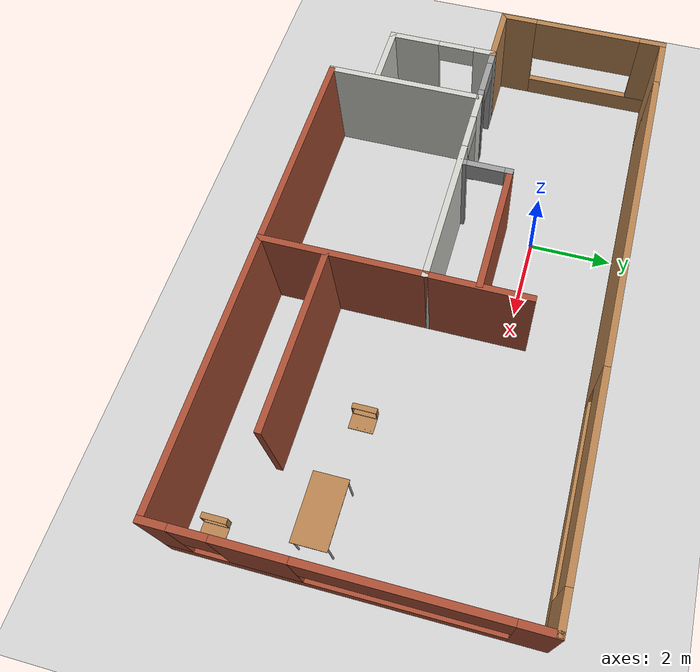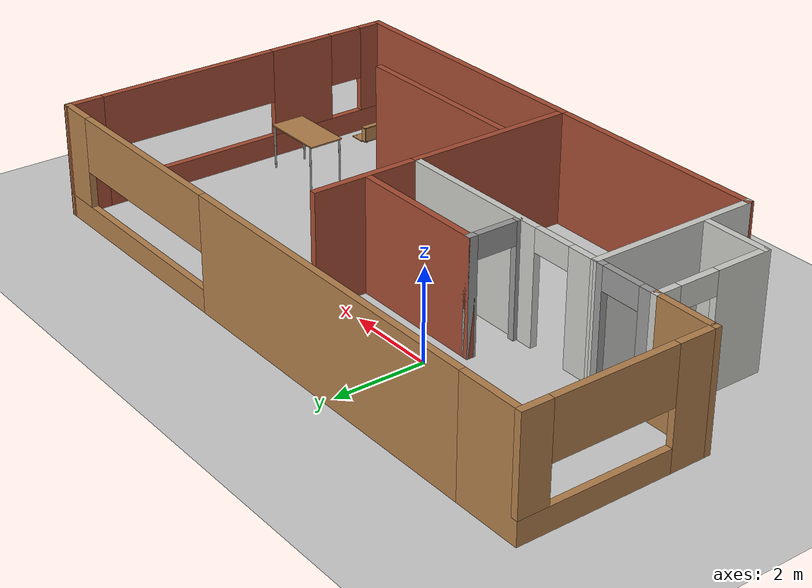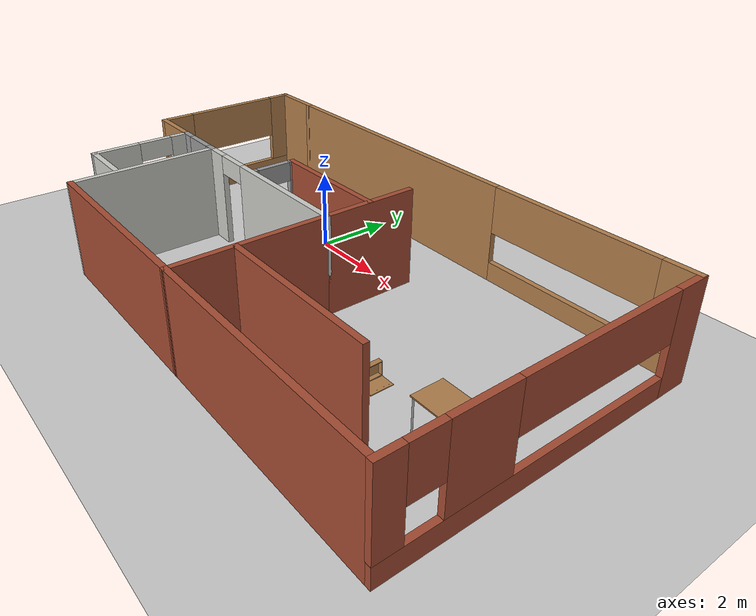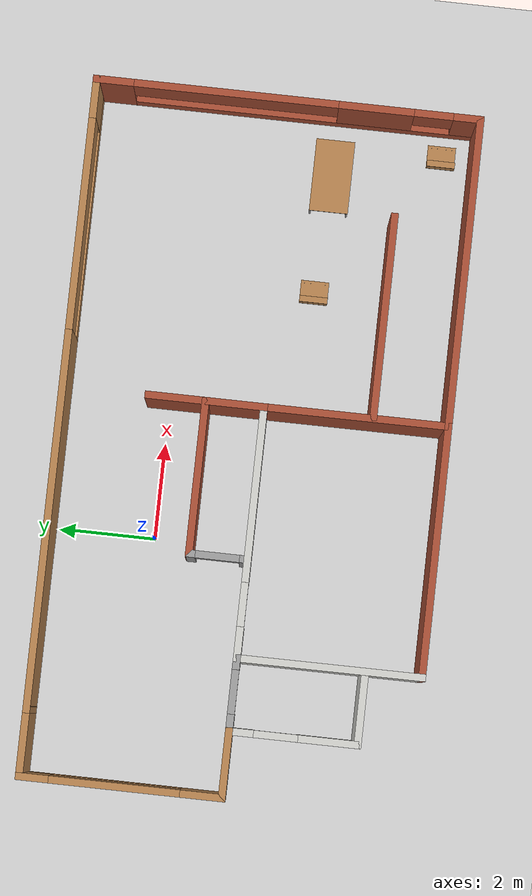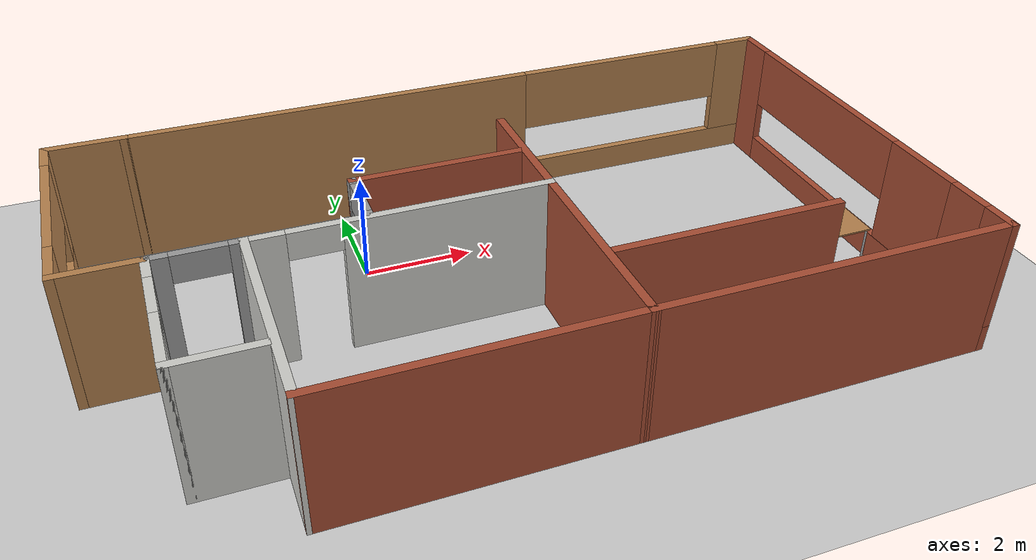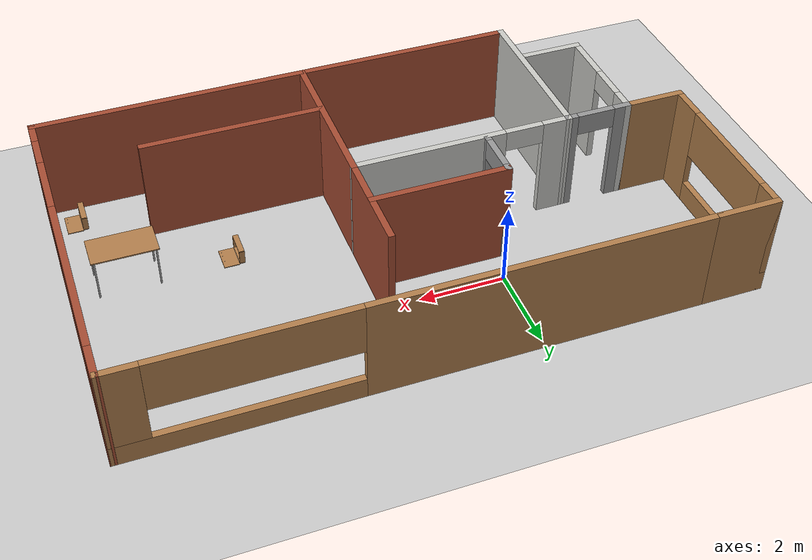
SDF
<sdf version="1.6">
 <world name="default">
  <model name="ground_plane">
   <static>1</static>
   <link name="link">
    <collision name="collision">
     <geometry><plane><normal>0 0 1</normal><size>100 100</size></plane></geometry>
     <surface><friction><ode><mu>100</mu><mu2>50</mu2></ode></friction></surface>
    </collision>
    <visual name="visual">
     <cast_shadows>0</cast_shadows>
     <geometry><plane><normal>0 0 1</normal><size>100 100</size></plane></geometry>
     <material>
      <script><uri>file://media/materials/scripts/gazebo.material</uri><name>Gazebo/Grey</name></script>
     </material>
    </visual>
   </link>
  </model>
  <model name="myplace">
   <pose>1.99043 -1.78813 0 0 -0 0</pose>
   <link name="Wall_56">
    <pose>-5.02365 -0.175493 0 0 -0 3.14159</pose>
    <visual name="Wall_56_Visual_0">
     <pose>-0.660344 0 1.25 0 -0 0</pose>
     <geometry><box><size>0.30723 0.15 2.5</size></box></geometry>
     <material>
      <script><uri>file://media/materials/scripts/gazebo.material</uri><name>Gazebo/Grey</name></script>
      <ambient>1 1 1 1</ambient>
     </material>
     <meta><layer>0</layer></meta>
    </visual>
    <collision name="Wall_56_Collision_0">
     <geometry><box><size>0.30723 0.15 2.5</size></box></geometry>
     <pose>-0.660344 0 1.25 0 -0 0</pose>
    </collision>
    <visual name="Wall_56_Visual_1">
     <pose>0.603615 0 1.25 0 -0 0</pose>
     <geometry><box><size>0.420688 0.15 2.5</size></box></geometry>
     <material>
      <script><uri>file://media/materials/scripts/gazebo.material</uri><name>Gazebo/Grey</name></script>
      <ambient>1 1 1 1</ambient>
     </material>
     <meta><layer>0</layer></meta>
    </visual>
    <collision name="Wall_56_Collision_1">
     <geometry><box><size>0.420688 0.15 2.5</size></box></geometry>
     <pose>0.603615 0 1.25 0 -0 0</pose>
    </collision>
    <visual name="Wall_56_Visual_2">
     <pose>-0.056729 0 2.25 0 -0 0</pose>
     <geometry><box><size>0.9 0.15 0.5</size></box></geometry>
     <material>
      <script><uri>file://media/materials/scripts/gazebo.material</uri><name>Gazebo/Grey</name></script>
      <ambient>1 1 1 1</ambient>
     </material>
     <meta><layer>0</layer></meta>
    </visual>
    <collision name="Wall_56_Collision_2">
     <geometry><box><size>0.9 0.15 0.5</size></box></geometry>
     <pose>-0.056729 0 2.25 0 -0 0</pose>
    </collision>
   </link>
   <link name="Wall_58">
    <pose>0.66434 3.92507 0 0 -0 8.8e-05</pose>
    <visual name="Wall_58_Visual_0">
     <pose>-2.59963 0 1.25 0 -0 0</pose>
     <geometry><box><size>7.80465 0.15 2.5</size></box></geometry>
     <material>
      <script><uri>file://media/materials/scripts/gazebo.material</uri><name>Gazebo/Wood</name></script>
      <ambient>1 1 1 1</ambient>
     </material>
     <meta><layer>0</layer></meta>
    </visual>
    <collision name="Wall_58_Collision_0">
     <geometry><box><size>7.80465 0.15 2.5</size></box></geometry>
     <pose>-2.59963 0 1.25 0 -0 0</pose>
    </collision>
    <visual name="Wall_58_Visual_1">
     <pose>3.90232 0 0.25 0 -0 0</pose>
     <geometry><box><size>5.19925 0.15 0.5</size></box></geometry>
     <material>
      <script><uri>file://media/materials/scripts/gazebo.material</uri><name>Gazebo/Wood</name></script>
      <ambient>1 1 1 1</ambient>
     </material>
     <meta><layer>0</layer></meta>
    </visual>
    <collision name="Wall_58_Collision_1">
     <geometry><box><size>5.19925 0.15 0.5</size></box></geometry>
     <pose>3.90232 0 0.25 0 -0 0</pose>
    </collision>
    <visual name="Wall_58_Visual_2">
     <pose>6.07184 0 1.5 0 -0 0</pose>
     <geometry><box><size>0.860213 0.15 2</size></box></geometry>
     <material>
      <script><uri>file://media/materials/scripts/gazebo.material</uri><name>Gazebo/Wood</name></script>
      <ambient>1 1 1 1</ambient>
     </material>
     <meta><layer>0</layer></meta>
    </visual>
    <collision name="Wall_58_Collision_2">
     <geometry><box><size>0.860213 0.15 2</size></box></geometry>
     <pose>6.07184 0 1.5 0 -0 0</pose>
    </collision>
    <visual name="Wall_58_Visual_3">
     <pose>3.47222 0 1.9 0 -0 0</pose>
     <geometry><box><size>4.33904 0.15 1.2</size></box></geometry>
     <material>
      <script><uri>file://media/materials/scripts/gazebo.material</uri><name>Gazebo/Wood</name></script>
      <ambient>1 1 1 1</ambient>
     </material>
     <meta><layer>0</layer></meta>
    </visual>
    <collision name="Wall_58_Collision_3">
     <geometry><box><size>4.33904 0.15 1.2</size></box></geometry>
     <pose>3.47222 0 1.9 0 -0 0</pose>
    </collision>
   </link>
   <link name="Wall_59">
    <pose>7.11261 0.000633 0 0 0 -1.5708</pose>
    <visual name="Wall_59_Visual_0">
     <pose>-3.58058 0 1.25 0 -0 0</pose>
     <geometry><box><size>0.838846 0.15 2.5</size></box></geometry>
     <material>
      <script><uri>file://media/materials/scripts/gazebo.material</uri><name>Gazebo/Bricks</name></script>
      <ambient>1 1 1 1</ambient>
     </material>
     <meta><layer>0</layer></meta>
    </visual>
    <collision name="Wall_59_Collision_0">
     <geometry><box><size>0.838846 0.15 2.5</size></box></geometry>
     <pose>-3.58058 0 1.25 0 -0 0</pose>
    </collision>
    <visual name="Wall_59_Visual_1">
     <pose>0.419423 0 0.25 0 -0 0</pose>
     <geometry><box><size>7.16115 0.15 0.5</size></box></geometry>
     <material>
      <script><uri>file://media/materials/scripts/gazebo.material</uri><name>Gazebo/Bricks</name></script>
      <ambient>1 1 1 1</ambient>
     </material>
     <meta><layer>0</layer></meta>
    </visual>
    <collision name="Wall_59_Collision_1">
     <geometry><box><size>7.16115 0.15 0.5</size></box></geometry>
     <pose>0.419423 0 0.25 0 -0 0</pose>
    </collision>
    <visual name="Wall_59_Visual_2">
     <pose>1.80126 0 1.5 0 -0 0</pose>
     <geometry><box><size>1.54516 0.15 2</size></box></geometry>
     <material>
      <script><uri>file://media/materials/scripts/gazebo.material</uri><name>Gazebo/Bricks</name></script>
      <ambient>1 1 1 1</ambient>
     </material>
     <meta><layer>0</layer></meta>
    </visual>
    <collision name="Wall_59_Collision_2">
     <geometry><box><size>1.54516 0.15 2</size></box></geometry>
     <pose>1.80126 0 1.5 0 -0 0</pose>
    </collision>
    <visual name="Wall_59_Visual_3">
     <pose>3.68692 0 1.5 0 -0 0</pose>
     <geometry><box><size>0.62616 0.15 2</size></box></geometry>
     <material>
      <script><uri>file://media/materials/scripts/gazebo.material</uri><name>Gazebo/Bricks</name></script>
      <ambient>1 1 1 1</ambient>
     </material>
     <meta><layer>0</layer></meta>
    </visual>
    <collision name="Wall_59_Collision_3">
     <geometry><box><size>0.62616 0.15 2</size></box></geometry>
     <pose>3.68692 0 1.5 0 -0 0</pose>
    </collision>
    <visual name="Wall_59_Visual_4">
     <pose>-1.06624 0 1.9 0 -0 0</pose>
     <geometry><box><size>4.18983 0.15 1.2</size></box></geometry>
     <material>
      <script><uri>file://media/materials/scripts/gazebo.material</uri><name>Gazebo/Bricks</name></script>
      <ambient>1 1 1 1</ambient>
     </material>
     <meta><layer>0</layer></meta>
    </visual>
    <collision name="Wall_59_Collision_4">
     <geometry><box><size>4.18983 0.15 1.2</size></box></geometry>
     <pose>-1.06624 0 1.9 0 -0 0</pose>
    </collision>
    <visual name="Wall_59_Visual_5">
     <pose>2.97384 0 1.9 0 -0 0</pose>
     <geometry><box><size>0.8 0.15 1.2</size></box></geometry>
     <material>
      <script><uri>file://media/materials/scripts/gazebo.material</uri><name>Gazebo/Bricks</name></script>
      <ambient>1 1 1 1</ambient>
     </material>
     <meta><layer>0</layer></meta>
    </visual>
    <collision name="Wall_59_Collision_5">
     <geometry><box><size>0.8 0.15 1.2</size></box></geometry>
     <pose>2.97384 0 1.9 0 -0 0</pose>
    </collision>
   </link>
   <link name="Wall_60">
    <collision name="Wall_60_Collision">
     <geometry><box><size>6.41862 0.15 2.5</size></box></geometry>
     <pose>0 0 1.25 0 -0 0</pose>
    </collision>
    <visual name="Wall_60_Visual">
     <pose>0 0 1.25 0 -0 0</pose>
     <geometry><box><size>6.41862 0.15 2.5</size></box></geometry>
     <material>
      <script><uri>file://media/materials/scripts/gazebo.material</uri><name>Gazebo/Bricks</name></script>
      <ambient>1 1 1 1</ambient>
     </material>
     <meta><layer>0</layer></meta>
    </visual>
    <pose>3.95698 -3.92493 0 0 0 -3.14141</pose>
   </link>
   <link name="Wall_69">
    <pose>-1.73469 -0.175493 0 0 -0 0</pose>
    <visual name="Wall_69_Visual_0">
     <pose>-2.26885 0 1.25 0 -0 0</pose>
     <geometry><box><size>0.712304 0.15 2.5</size></box></geometry>
     <material>
      <script><uri>file://media/materials/scripts/gazebo.material</uri><name>Gazebo/CeilingTiled</name></script>
      <ambient>1 1 1 1</ambient>
     </material>
     <meta><layer>0</layer></meta>
    </visual>
    <collision name="Wall_69_Collision_0">
     <geometry><box><size>0.712304 0.15 2.5</size></box></geometry>
     <pose>-2.26885 0 1.25 0 -0 0</pose>
    </collision>
    <visual name="Wall_69_Visual_1">
     <pose>0.806152 0 1.25 0 -0 0</pose>
     <geometry><box><size>3.6377 0.15 2.5</size></box></geometry>
     <material>
      <script><uri>file://media/materials/scripts/gazebo.material</uri><name>Gazebo/CeilingTiled</name></script>
      <ambient>1 1 1 1</ambient>
     </material>
     <meta><layer>0</layer></meta>
    </visual>
    <collision name="Wall_69_Collision_1">
     <geometry><box><size>3.6377 0.15 2.5</size></box></geometry>
     <pose>0.806152 0 1.25 0 -0 0</pose>
    </collision>
    <visual name="Wall_69_Visual_2">
     <pose>-1.4627 0 2.25 0 -0 0</pose>
     <geometry><box><size>0.9 0.15 0.5</size></box></geometry>
     <material>
      <script><uri>file://media/materials/scripts/gazebo.material</uri><name>Gazebo/CeilingTiled</name></script>
      <ambient>1 1 1 1</ambient>
     </material>
     <meta><layer>0</layer></meta>
    </visual>
    <collision name="Wall_69_Collision_2">
     <geometry><box><size>0.9 0.15 0.5</size></box></geometry>
     <pose>-1.4627 0 2.25 0 -0 0</pose>
    </collision>
   </link>
   <link name="Wall_72">
    <collision name="Wall_72_Collision">
     <geometry><box><size>3.90001 0.15 2.5</size></box></geometry>
     <pose>0 0 1.25 0 -0 0</pose>
    </collision>
    <visual name="Wall_72_Visual">
     <pose>0 0 1.25 0 -0 0</pose>
     <geometry><box><size>3.90001 0.15 2.5</size></box></geometry>
     <material>
      <script><uri>file://media/materials/scripts/gazebo.material</uri><name>Gazebo/Bricks</name></script>
      <ambient>1 1 1 1</ambient>
     </material>
     <meta><layer>0</layer></meta>
    </visual>
    <pose>0.818989 -2.05049 0 0 0 -1.56883</pose>
   </link>
   <link name="Wall_74">
    <collision name="Wall_74_Collision">
     <geometry><box><size>5.25 0.15 2.5</size></box></geometry>
     <pose>0 0 1.25 0 -0 0</pose>
    </collision>
    <visual name="Wall_74_Visual">
     <pose>0 0 1.25 0 -0 0</pose>
     <geometry><box><size>5.25 0.15 2.5</size></box></geometry>
     <material>
      <script><uri>file://media/materials/scripts/gazebo.material</uri><name>Gazebo/Bricks</name></script>
      <ambient>1 1 1 1</ambient>
     </material>
     <meta><layer>0</layer></meta>
    </visual>
    <pose>-1.72733 -3.92549 0 0 -0 3.14159</pose>
   </link>
   <link name="Wall_75">
    <collision name="Wall_75_Collision">
     <geometry><box><size>3.90001 0.15 2.5</size></box></geometry>
     <pose>0 0 1.25 0 -0 0</pose>
    </collision>
    <visual name="Wall_75_Visual">
     <pose>0 0 1.25 0 -0 0</pose>
     <geometry><box><size>3.90001 0.15 2.5</size></box></geometry>
     <material>
      <script><uri>file://media/materials/scripts/gazebo.material</uri><name>Gazebo/CeilingTiled</name></script>
      <ambient>1 1 1 1</ambient>
     </material>
     <meta><layer>0</layer></meta>
    </visual>
    <pose>-4.28101 -2.05049 0 0 -0 1.57276</pose>
   </link>
   <link name="Wall_79">
    <collision name="Wall_79_Collision">
     <geometry><box><size>2.5 0.15 2.5</size></box></geometry>
     <pose>0 0 1.25 0 -0 0</pose>
    </collision>
    <visual name="Wall_79_Visual">
     <pose>0 0 1.25 0 -0 0</pose>
     <geometry><box><size>2.5 0.15 2.5</size></box></geometry>
     <material>
      <script><uri>file://media/materials/scripts/gazebo.material</uri><name>Gazebo/Bricks</name></script>
      <ambient>1 1 1 1</ambient>
     </material>
     <meta><layer>0</layer></meta>
    </visual>
    <pose>0.815308 0.999507 0 0 -0 1.5708</pose>
   </link>
   <link name="Wall_81">
    <collision name="Wall_81_Collision">
     <geometry><box><size>4.25 0.15 2.5</size></box></geometry>
     <pose>0 0 1.25 0 -0 0</pose>
    </collision>
    <visual name="Wall_81_Visual">
     <pose>0 0 1.25 0 -0 0</pose>
     <geometry><box><size>4.25 0.15 2.5</size></box></geometry>
     <material>
      <script><uri>file://media/materials/scripts/gazebo.material</uri><name>Gazebo/Bricks</name></script>
      <ambient>1 1 1 1</ambient>
     </material>
     <meta><layer>0</layer></meta>
    </visual>
    <pose>2.90335 -2.39757 0 0 -0 0</pose>
   </link>
   <link name="Wall_83">
    <collision name="Wall_83_Collision">
     <geometry><box><size>3.25 0.15 2.5</size></box></geometry>
     <pose>0 0 1.25 0 -0 0</pose>
    </collision>
    <visual name="Wall_83_Visual">
     <pose>0 0 1.25 0 -0 0</pose>
     <geometry><box><size>3.25 0.15 2.5</size></box></geometry>
     <material>
      <script><uri>file://media/materials/scripts/gazebo.material</uri><name>Gazebo/Bricks</name></script>
      <ambient>1 1 1 1</ambient>
     </material>
     <meta><layer>0</layer></meta>
    </visual>
    <pose>-0.739288 1.01357 0 0 -0 3.14159</pose>
   </link>
   <link name="Wall_84">
    <pose>-2.28929 0.463574 0 0 0 -1.5708</pose>
    <visual name="Wall_84_Visual_0">
     <pose>-0.524684 0 1.25 0 -0 0</pose>
     <geometry><box><size>0.200631 0.15 2.5</size></box></geometry>
     <material>
      <script><uri>file://media/materials/scripts/gazebo.material</uri><name>Gazebo/Grey</name></script>
      <ambient>1 1 1 1</ambient>
     </material>
     <meta><layer>0</layer></meta>
    </visual>
    <collision name="Wall_84_Collision_0">
     <geometry><box><size>0.200631 0.15 2.5</size></box></geometry>
     <pose>-0.524684 0 1.25 0 -0 0</pose>
    </collision>
    <visual name="Wall_84_Visual_1">
     <pose>0.550316 0 1.25 0 -0 0</pose>
     <geometry><box><size>0.149369 0.15 2.5</size></box></geometry>
     <material>
      <script><uri>file://media/materials/scripts/gazebo.material</uri><name>Gazebo/Grey</name></script>
      <ambient>1 1 1 1</ambient>
     </material>
     <meta><layer>0</layer></meta>
    </visual>
    <collision name="Wall_84_Collision_1">
     <geometry><box><size>0.149369 0.15 2.5</size></box></geometry>
     <pose>0.550316 0 1.25 0 -0 0</pose>
    </collision>
    <visual name="Wall_84_Visual_2">
     <pose>0.025631 0 2.25 0 -0 0</pose>
     <geometry><box><size>0.9 0.15 0.5</size></box></geometry>
     <material>
      <script><uri>file://media/materials/scripts/gazebo.material</uri><name>Gazebo/Grey</name></script>
      <ambient>1 1 1 1</ambient>
     </material>
     <meta><layer>0</layer></meta>
    </visual>
    <collision name="Wall_84_Collision_2">
     <geometry><box><size>0.9 0.15 0.5</size></box></geometry>
     <pose>0.025631 0 2.25 0 -0 0</pose>
    </collision>
   </link>
   <link name="Wall_86">
    <pose>-5.76261 -1.47549 0 0 0 -1.5708</pose>
    <visual name="Wall_86_Visual_0">
     <pose>-1.09105 0 1.25 0 -0 0</pose>
     <geometry><box><size>0.567901 0.15 2.5</size></box></geometry>
     <material>
      <script><uri>file://media/materials/scripts/gazebo.material</uri><name>Gazebo/CeilingTiled</name></script>
      <ambient>1 1 1 1</ambient>
     </material>
     <meta><layer>0</layer></meta>
    </visual>
    <collision name="Wall_86_Collision_0">
     <geometry><box><size>0.567901 0.15 2.5</size></box></geometry>
     <pose>-1.09105 0 1.25 0 -0 0</pose>
    </collision>
    <visual name="Wall_86_Visual_1">
     <pose>0.73395 0 1.25 0 -0 0</pose>
     <geometry><box><size>1.2821 0.15 2.5</size></box></geometry>
     <material>
      <script><uri>file://media/materials/scripts/gazebo.material</uri><name>Gazebo/CeilingTiled</name></script>
      <ambient>1 1 1 1</ambient>
     </material>
     <meta><layer>0</layer></meta>
    </visual>
    <collision name="Wall_86_Collision_1">
     <geometry><box><size>1.2821 0.15 2.5</size></box></geometry>
     <pose>0.73395 0 1.25 0 -0 0</pose>
    </collision>
    <visual name="Wall_86_Visual_2">
     <pose>-0.357099 0 2.25 0 -0 0</pose>
     <geometry><box><size>0.9 0.15 0.5</size></box></geometry>
     <material>
      <script><uri>file://media/materials/scripts/gazebo.material</uri><name>Gazebo/CeilingTiled</name></script>
      <ambient>1 1 1 1</ambient>
     </material>
     <meta><layer>0</layer></meta>
    </visual>
    <collision name="Wall_86_Collision_2">
     <geometry><box><size>0.9 0.15 0.5</size></box></geometry>
     <pose>-0.357099 0 2.25 0 -0 0</pose>
    </collision>
   </link>
   <link name="Wall_87">
    <collision name="Wall_87_Collision">
     <geometry><box><size>1.5 0.15 2.5</size></box></geometry>
     <pose>0 0 1.25 0 -0 0</pose>
    </collision>
    <visual name="Wall_87_Visual">
     <pose>0 0 1.25 0 -0 0</pose>
     <geometry><box><size>1.5 0.15 2.5</size></box></geometry>
     <material>
      <script><uri>file://media/materials/scripts/gazebo.material</uri><name>Gazebo/CeilingTiled</name></script>
      <ambient>1 1 1 1</ambient>
     </material>
     <meta><layer>0</layer></meta>
    </visual>
    <pose>-5.08761 -2.77549 0 0 -0 0</pose>
   </link>
   <link name="Wall_89">
    <collision name="Wall_89_Collision">
     <geometry><box><size>1.5 0.15 2.5</size></box></geometry>
     <pose>0 0 1.25 0 -0 0</pose>
    </collision>
    <visual name="Wall_89_Visual">
     <pose>0 0 1.25 0 -0 0</pose>
     <geometry><box><size>1.5 0.15 2.5</size></box></geometry>
     <material>
      <script><uri>file://media/materials/scripts/gazebo.material</uri><name>Gazebo/Wood</name></script>
      <ambient>1 1 1 1</ambient>
     </material>
     <meta><layer>0</layer></meta>
    </visual>
    <pose>-6.43761 -0.175493 0 0 -0 3.14159</pose>
   </link>
   <link name="Wall_90">
    <pose>-7.11261 1.87451 0 0 -0 1.5708</pose>
    <visual name="Wall_90_Visual_0">
     <pose>-1.66099 0 1.25 0 -0 0</pose>
     <geometry><box><size>0.928026 0.15 2.5</size></box></geometry>
     <material>
      <script><uri>file://media/materials/scripts/gazebo.material</uri><name>Gazebo/Wood</name></script>
      <ambient>1 1 1 1</ambient>
     </material>
     <meta><layer>0</layer></meta>
    </visual>
    <collision name="Wall_90_Collision_0">
     <geometry><box><size>0.928026 0.15 2.5</size></box></geometry>
     <pose>-1.66099 0 1.25 0 -0 0</pose>
    </collision>
    <visual name="Wall_90_Visual_1">
     <pose>0.464013 0 0.25 0 -0 0</pose>
     <geometry><box><size>3.32197 0.15 0.5</size></box></geometry>
     <material>
      <script><uri>file://media/materials/scripts/gazebo.material</uri><name>Gazebo/Wood</name></script>
      <ambient>1 1 1 1</ambient>
     </material>
     <meta><layer>0</layer></meta>
    </visual>
    <collision name="Wall_90_Collision_1">
     <geometry><box><size>3.32197 0.15 0.5</size></box></geometry>
     <pose>0.464013 0 0.25 0 -0 0</pose>
    </collision>
    <visual name="Wall_90_Visual_2">
     <pose>1.79142 0 1.5 0 -0 0</pose>
     <geometry><box><size>0.667162 0.15 2</size></box></geometry>
     <material>
      <script><uri>file://media/materials/scripts/gazebo.material</uri><name>Gazebo/Wood</name></script>
      <ambient>1 1 1 1</ambient>
     </material>
     <meta><layer>0</layer></meta>
    </visual>
    <collision name="Wall_90_Collision_2">
     <geometry><box><size>0.667162 0.15 2</size></box></geometry>
     <pose>1.79142 0 1.5 0 -0 0</pose>
    </collision>
    <visual name="Wall_90_Visual_3">
     <pose>0.130432 0 1.9 0 -0 0</pose>
     <geometry><box><size>2.65481 0.15 1.2</size></box></geometry>
     <material>
      <script><uri>file://media/materials/scripts/gazebo.material</uri><name>Gazebo/Wood</name></script>
      <ambient>1 1 1 1</ambient>
     </material>
     <meta><layer>0</layer></meta>
    </visual>
    <collision name="Wall_90_Collision_3">
     <geometry><box><size>2.65481 0.15 1.2</size></box></geometry>
     <pose>0.130432 0 1.9 0 -0 0</pose>
    </collision>
   </link>
   <link name="Wall_91">
    <collision name="Wall_91_Collision">
     <geometry><box><size>1.5 0.15 2.5</size></box></geometry>
     <pose>0 0 1.25 0 -0 0</pose>
    </collision>
    <visual name="Wall_91_Visual">
     <pose>0 0 1.25 0 -0 0</pose>
     <geometry><box><size>1.5 0.15 2.5</size></box></geometry>
     <material>
      <script><uri>file://media/materials/scripts/gazebo.material</uri><name>Gazebo/Wood</name></script>
      <ambient>1 1 1 1</ambient>
     </material>
     <meta><layer>0</layer></meta>
    </visual>
    <pose>-6.43761 3.92451 0 0 -0 0</pose>
   </link>
   <static>1</static>
  </model>
  <model name="wooden_case_3">
   <link name="base">
    <pose>0 0 0.024 0 -0 0</pose>
    <inertial>
     <pose>-0.022184 0 0.171592 0 -0 0</pose>
     <mass>3.96264</mass>
     <inertia>
      <ixx>0.213536</ixx>
      <ixy>0</ixy>
      <ixz>0.000779377</ixz>
      <iyy>0.0708943</iyy>
      <iyz>0</iyz>
      <izz>0.154604</izz>
     </inertia>
    </inertial>
    <collision name="collision_back">
     <pose>-0.053975 0 0.1778 0 -0 0</pose>
     <geometry><box><size>0.01905 0.5461 0.3175</size></box></geometry>
     <surface>
      <contact>
       <poissons_ratio>0.347</poissons_ratio>
       <elastic_modulus>8.8e+09</elastic_modulus>
       <ode><kp>100000</kp><kd>100</kd><max_vel>100</max_vel><min_depth>0.001</min_depth></ode>
      </contact>
      <friction>
       <torsional>
        <coefficient>1</coefficient>
        <use_patch_radius>0</use_patch_radius>
        <surface_radius>0.01</surface_radius>
       </torsional>
      </friction>
     </surface>
    </collision>
    <visual name="visual_back">
     <pose>-0.053975 0 0.1778 0 -0 0</pose>
     <geometry><box><size>0.01905 0.5461 0.3175</size></box></geometry>
     <material>
      <script><uri>file://media/materials/scripts/gazebo.material</uri><name>Gazebo/Wood</name></script>
     </material>
    </visual>
    <collision name="collision_bottom">
     <pose>0 0 0.009525 0 -0 0</pose>
     <geometry><box><size>0.127 0.5842 0.01905</size></box></geometry>
     <surface>
      <contact>
       <poissons_ratio>0.347</poissons_ratio>
       <elastic_modulus>8.8e+09</elastic_modulus>
       <ode><kp>100000</kp><kd>100</kd><max_vel>100</max_vel><min_depth>0.001</min_depth></ode>
      </contact>
      <friction>
       <torsional>
        <coefficient>1</coefficient>
        <use_patch_radius>0</use_patch_radius>
        <surface_radius>0.01</surface_radius>
       </torsional>
      </friction>
     </surface>
    </collision>
    <visual name="visual_bottom">
     <pose>0 0 0.009525 0 -0 0</pose>
     <geometry><box><size>0.127 0.5842 0.01905</size></box></geometry>
     <material>
      <script><uri>file://media/materials/scripts/gazebo.material</uri><name>Gazebo/Wood</name></script>
     </material>
    </visual>
    <collision name="collision_top">
     <pose>0 0 0.346075 0 -0 0</pose>
     <geometry><box><size>0.127 0.5842 0.01905</size></box></geometry>
     <surface>
      <contact>
       <poissons_ratio>0.347</poissons_ratio>
       <elastic_modulus>8.8e+09</elastic_modulus>
       <ode><kp>100000</kp><kd>100</kd><max_vel>100</max_vel><min_depth>0.001</min_depth></ode>
      </contact>
      <friction>
       <torsional>
        <coefficient>1</coefficient>
        <use_patch_radius>0</use_patch_radius>
        <surface_radius>0.01</surface_radius>
       </torsional>
      </friction>
     </surface>
    </collision>
    <visual name="visual_top">
     <pose>0 0 0.346075 0 -0 0</pose>
     <geometry><box><size>0.127 0.5842 0.01905</size></box></geometry>
     <material>
      <script><uri>file://media/materials/scripts/gazebo.material</uri><name>Gazebo/Wood</name></script>
     </material>
    </visual>
    <collision name="collision_left">
     <pose>0 -0.282575 0.1778 0 -0 0</pose>
     <geometry><box><size>0.127 0.01905 0.3175</size></box></geometry>
     <surface>
      <contact>
       <poissons_ratio>0.347</poissons_ratio>
       <elastic_modulus>8.8e+09</elastic_modulus>
       <ode><kp>100000</kp><kd>100</kd><max_vel>100</max_vel><min_depth>0.001</min_depth></ode>
      </contact>
      <friction>
       <torsional>
        <coefficient>1</coefficient>
        <use_patch_radius>0</use_patch_radius>
        <surface_radius>0.01</surface_radius>
       </torsional>
      </friction>
     </surface>
    </collision>
    <visual name="visual_left">
     <pose>0 -0.282575 0.1778 0 -0 0</pose>
     <geometry><box><size>0.127 0.01905 0.3175</size></box></geometry>
     <material>
      <script><uri>file://media/materials/scripts/gazebo.material</uri><name>Gazebo/Wood</name></script>
     </material>
    </visual>
    <collision name="collision_right">
     <pose>0 0.282575 0.1778 0 -0 0</pose>
     <geometry><box><size>0.127 0.01905 0.3175</size></box></geometry>
     <surface>
      <contact>
       <poissons_ratio>0.347</poissons_ratio>
       <elastic_modulus>8.8e+09</elastic_modulus>
       <ode><kp>100000</kp><kd>100</kd><max_vel>100</max_vel><min_depth>0.001</min_depth></ode>
      </contact>
      <friction>
       <torsional>
        <coefficient>1</coefficient>
        <use_patch_radius>0</use_patch_radius>
        <surface_radius>0.01</surface_radius>
       </torsional>
      </friction>
     </surface>
    </collision>
    <visual name="visual_right">
     <pose>0 0.282575 0.1778 0 -0 0</pose>
     <geometry><box><size>0.127 0.01905 0.3175</size></box></geometry>
     <material>
      <script><uri>file://media/materials/scripts/gazebo.material</uri><name>Gazebo/Wood</name></script>
     </material>
    </visual>
    <collision name="collision_block_left">
     <pose>0.0095 -0.2151 -0.012 0 -0 0</pose>
     <geometry><box><size>0.108 0.05 0.024</size></box></geometry>
     <surface>
      <contact>
       <poissons_ratio>0.347</poissons_ratio>
       <elastic_modulus>8.8e+09</elastic_modulus>
       <ode><kp>100000</kp><kd>100</kd><max_vel>100</max_vel><min_depth>0.001</min_depth></ode>
      </contact>
      <friction>
       <torsional>
        <coefficient>1</coefficient>
        <use_patch_radius>0</use_patch_radius>
        <surface_radius>0.01</surface_radius>
       </torsional>
      </friction>
     </surface>
    </collision>
    <visual name="visual_block_left">
     <pose>0.0095 -0.2151 -0.012 0 -0 0</pose>
     <geometry><box><size>0.108 0.05 0.024</size></box></geometry>
     <material>
      <script><uri>file://media/materials/scripts/gazebo.material</uri><name>Gazebo/Wood</name></script>
     </material>
    </visual>
    <collision name="collision_block_right">
     <pose>0.0095 0.2151 -0.012 0 -0 0</pose>
     <geometry><box><size>0.108 0.05 0.024</size></box></geometry>
     <surface>
      <contact>
       <poissons_ratio>0.347</poissons_ratio>
       <elastic_modulus>8.8e+09</elastic_modulus>
       <ode><kp>100000</kp><kd>100</kd><max_vel>100</max_vel><min_depth>0.001</min_depth></ode>
      </contact>
      <friction>
       <torsional>
        <coefficient>1</coefficient>
        <use_patch_radius>0</use_patch_radius>
        <surface_radius>0.01</surface_radius>
       </torsional>
      </friction>
     </surface>
    </collision>
    <visual name="visual_block_right">
     <pose>0.0095 0.2151 -0.012 0 -0 0</pose>
     <geometry><box><size>0.108 0.05 0.024</size></box></geometry>
     <material>
      <script><uri>file://media/materials/scripts/gazebo.material</uri><name>Gazebo/Wood</name></script>
     </material>
    </visual>
   </link>
   <link name="lid">
    <pose>0.243775 0 0.009525 0 -0 0</pose>
    <inertial>
     <mass>1.97874</mass>
     <inertia>
      <ixx>0.0563367</ixx>
      <ixy>0</ixy>
      <ixz>0</ixz>
      <iyy>0.020911</iyy>
      <iyz>0</iyz>
      <izz>0.0771281</izz>
     </inertia>
    </inertial>
    <collision name="collision">
     <geometry><box><size>0.3556 0.5842 0.01905</size></box></geometry>
     <surface>
      <contact>
       <poissons_ratio>0.347</poissons_ratio>
       <elastic_modulus>8.8e+09</elastic_modulus>
       <ode><kp>100000</kp><kd>100</kd><max_vel>100</max_vel><min_depth>0.001</min_depth></ode>
      </contact>
      <friction>
       <torsional>
        <coefficient>1</coefficient>
        <use_patch_radius>0</use_patch_radius>
        <surface_radius>0.01</surface_radius>
       </torsional>
      </friction>
     </surface>
    </collision>
    <visual name="visual">
     <geometry><box><size>0.3556 0.5842 0.01905</size></box></geometry>
     <material>
      <script><uri>file://media/materials/scripts/gazebo.material</uri><name>Gazebo/Wood</name></script>
     </material>
    </visual>
    <visual name="tee_nut_1">
     <pose>0.122 -0.216 0 0 -0 0</pose>
     <geometry><cylinder><radius>0.00635</radius><length>0.0192405</length></cylinder></geometry>
     <material>
      <script><uri>file://media/materials/scripts/gazebo.material</uri><name>Gazebo/Grey</name></script>
     </material>
    </visual>
    <visual name="tee_nut_2">
     <pose>0.122 -0.088 0 0 -0 0</pose>
     <geometry><cylinder><radius>0.00635</radius><length>0.0192405</length></cylinder></geometry>
     <material>
      <script><uri>file://media/materials/scripts/gazebo.material</uri><name>Gazebo/Grey</name></script>
     </material>
    </visual>
    <visual name="tee_nut_3">
     <pose>0.122 0.088 0 0 -0 0</pose>
     <geometry><cylinder><radius>0.00635</radius><length>0.0192405</length></cylinder></geometry>
     <material>
      <script><uri>file://media/materials/scripts/gazebo.material</uri><name>Gazebo/Grey</name></script>
     </material>
    </visual>
    <visual name="tee_nut_4">
     <pose>0.122 0.216 0 0 -0 0</pose>
     <geometry><cylinder><radius>0.00635</radius><length>0.0192405</length></cylinder></geometry>
     <material>
      <script><uri>file://media/materials/scripts/gazebo.material</uri><name>Gazebo/Grey</name></script>
     </material>
    </visual>
   </link>
   <joint name="lid_hinge" type="revolute">
    <pose>-0.1778 0 0.01905 0 -0 0</pose>
    <parent>base</parent>
    <child>lid</child>
    <axis>
     <xyz>0 1 0</xyz>
     <limit><upper>0.523599</upper><lower>-1.5708</lower></limit>
     <use_parent_model_frame>0</use_parent_model_frame>
     <dynamics><spring_reference>0</spring_reference><spring_stiffness>0</spring_stiffness></dynamics>
    </axis>
   </joint>
   <pose>8.41592 -5.07318 -0.001057 0 -0.000429 0</pose>
  </model>
  <model name="table_0">
   <static>1</static>
   <link name="link">
    <collision name="surface">
     <pose>0 0 1 0 -0 0</pose>
     <geometry><box><size>1.5 0.8 0.03</size></box></geometry>
     <surface><friction><ode><mu>0.6</mu><mu2>0.6</mu2></ode></friction></surface>
    </collision>
    <visual name="visual1">
     <pose>0 0 1 0 -0 0</pose>
     <geometry><box><size>1.5 0.8 0.03</size></box></geometry>
     <material>
      <script><uri>file://media/materials/scripts/gazebo.material</uri><name>Gazebo/Wood</name></script>
     </material>
    </visual>
    <collision name="front_left_leg">
     <pose>0.68 0.38 0.5 0 -0 0</pose>
     <geometry><cylinder><radius>0.02</radius><length>1</length></cylinder></geometry>
    </collision>
    <visual name="front_left_leg">
     <pose>0.68 0.38 0.5 0 -0 0</pose>
     <geometry><cylinder><radius>0.02</radius><length>1</length></cylinder></geometry>
     <material>
      <script><uri>file://media/materials/scripts/gazebo.material</uri><name>Gazebo/Grey</name></script>
     </material>
    </visual>
    <collision name="front_right_leg">
     <pose>0.68 -0.38 0.5 0 -0 0</pose>
     <geometry><cylinder><radius>0.02</radius><length>1</length></cylinder></geometry>
    </collision>
    <visual name="front_right_leg">
     <pose>0.68 -0.38 0.5 0 -0 0</pose>
     <geometry><cylinder><radius>0.02</radius><length>1</length></cylinder></geometry>
     <material>
      <script><uri>file://media/materials/scripts/gazebo.material</uri><name>Gazebo/Grey</name></script>
     </material>
    </visual>
    <collision name="back_right_leg">
     <pose>-0.68 -0.38 0.5 0 -0 0</pose>
     <geometry><cylinder><radius>0.02</radius><length>1</length></cylinder></geometry>
    </collision>
    <visual name="back_right_leg">
     <pose>-0.68 -0.38 0.5 0 -0 0</pose>
     <geometry><cylinder><radius>0.02</radius><length>1</length></cylinder></geometry>
     <material>
      <script><uri>file://media/materials/scripts/gazebo.material</uri><name>Gazebo/Grey</name></script>
     </material>
    </visual>
    <collision name="back_left_leg">
     <pose>-0.68 0.38 0.5 0 -0 0</pose>
     <geometry><cylinder><radius>0.02</radius><length>1</length></cylinder></geometry>
    </collision>
    <visual name="back_left_leg">
     <pose>-0.68 0.38 0.5 0 -0 0</pose>
     <geometry><cylinder><radius>0.02</radius><length>1</length></cylinder></geometry>
     <material>
      <script><uri>file://media/materials/scripts/gazebo.material</uri><name>Gazebo/Grey</name></script>
     </material>
    </visual>
   </link>
   <pose>7.83567 -2.84321 0 0 -0 0</pose>
  </model>
  <model name="wooden_case_4">
   <link name="base">
    <pose>0 0 0.024 0 -0 0</pose>
    <inertial>
     <pose>-0.022184 0 0.171592 0 -0 0</pose>
     <mass>3.96264</mass>
     <inertia>
      <ixx>0.213536</ixx>
      <ixy>0</ixy>
      <ixz>0.000779377</ixz>
      <iyy>0.0708943</iyy>
      <iyz>0</iyz>
      <izz>0.154604</izz>
     </inertia>
    </inertial>
    <collision name="collision_back">
     <pose>-0.053975 0 0.1778 0 -0 0</pose>
     <geometry><box><size>0.01905 0.5461 0.3175</size></box></geometry>
     <surface>
      <contact>
       <poissons_ratio>0.347</poissons_ratio>
       <elastic_modulus>8.8e+09</elastic_modulus>
       <ode><kp>100000</kp><kd>100</kd><max_vel>100</max_vel><min_depth>0.001</min_depth></ode>
      </contact>
      <friction>
       <torsional>
        <coefficient>1</coefficient>
        <use_patch_radius>0</use_patch_radius>
        <surface_radius>0.01</surface_radius>
       </torsional>
      </friction>
     </surface>
    </collision>
    <visual name="visual_back">
     <pose>-0.053975 0 0.1778 0 -0 0</pose>
     <geometry><box><size>0.01905 0.5461 0.3175</size></box></geometry>
     <material>
      <script><uri>file://media/materials/scripts/gazebo.material</uri><name>Gazebo/Wood</name></script>
     </material>
    </visual>
    <collision name="collision_bottom">
     <pose>0 0 0.009525 0 -0 0</pose>
     <geometry><box><size>0.127 0.5842 0.01905</size></box></geometry>
     <surface>
      <contact>
       <poissons_ratio>0.347</poissons_ratio>
       <elastic_modulus>8.8e+09</elastic_modulus>
       <ode><kp>100000</kp><kd>100</kd><max_vel>100</max_vel><min_depth>0.001</min_depth></ode>
      </contact>
      <friction>
       <torsional>
        <coefficient>1</coefficient>
        <use_patch_radius>0</use_patch_radius>
        <surface_radius>0.01</surface_radius>
       </torsional>
      </friction>
     </surface>
    </collision>
    <visual name="visual_bottom">
     <pose>0 0 0.009525 0 -0 0</pose>
     <geometry><box><size>0.127 0.5842 0.01905</size></box></geometry>
     <material>
      <script><uri>file://media/materials/scripts/gazebo.material</uri><name>Gazebo/Wood</name></script>
     </material>
    </visual>
    <collision name="collision_top">
     <pose>0 0 0.346075 0 -0 0</pose>
     <geometry><box><size>0.127 0.5842 0.01905</size></box></geometry>
     <surface>
      <contact>
       <poissons_ratio>0.347</poissons_ratio>
       <elastic_modulus>8.8e+09</elastic_modulus>
       <ode><kp>100000</kp><kd>100</kd><max_vel>100</max_vel><min_depth>0.001</min_depth></ode>
      </contact>
      <friction>
       <torsional>
        <coefficient>1</coefficient>
        <use_patch_radius>0</use_patch_radius>
        <surface_radius>0.01</surface_radius>
       </torsional>
      </friction>
     </surface>
    </collision>
    <visual name="visual_top">
     <pose>0 0 0.346075 0 -0 0</pose>
     <geometry><box><size>0.127 0.5842 0.01905</size></box></geometry>
     <material>
      <script><uri>file://media/materials/scripts/gazebo.material</uri><name>Gazebo/Wood</name></script>
     </material>
    </visual>
    <collision name="collision_left">
     <pose>0 -0.282575 0.1778 0 -0 0</pose>
     <geometry><box><size>0.127 0.01905 0.3175</size></box></geometry>
     <surface>
      <contact>
       <poissons_ratio>0.347</poissons_ratio>
       <elastic_modulus>8.8e+09</elastic_modulus>
       <ode><kp>100000</kp><kd>100</kd><max_vel>100</max_vel><min_depth>0.001</min_depth></ode>
      </contact>
      <friction>
       <torsional>
        <coefficient>1</coefficient>
        <use_patch_radius>0</use_patch_radius>
        <surface_radius>0.01</surface_radius>
       </torsional>
      </friction>
     </surface>
    </collision>
    <visual name="visual_left">
     <pose>0 -0.282575 0.1778 0 -0 0</pose>
     <geometry><box><size>0.127 0.01905 0.3175</size></box></geometry>
     <material>
      <script><uri>file://media/materials/scripts/gazebo.material</uri><name>Gazebo/Wood</name></script>
     </material>
    </visual>
    <collision name="collision_right">
     <pose>0 0.282575 0.1778 0 -0 0</pose>
     <geometry><box><size>0.127 0.01905 0.3175</size></box></geometry>
     <surface>
      <contact>
       <poissons_ratio>0.347</poissons_ratio>
       <elastic_modulus>8.8e+09</elastic_modulus>
       <ode><kp>100000</kp><kd>100</kd><max_vel>100</max_vel><min_depth>0.001</min_depth></ode>
      </contact>
      <friction>
       <torsional>
        <coefficient>1</coefficient>
        <use_patch_radius>0</use_patch_radius>
        <surface_radius>0.01</surface_radius>
       </torsional>
      </friction>
     </surface>
    </collision>
    <visual name="visual_right">
     <pose>0 0.282575 0.1778 0 -0 0</pose>
     <geometry><box><size>0.127 0.01905 0.3175</size></box></geometry>
     <material>
      <script><uri>file://media/materials/scripts/gazebo.material</uri><name>Gazebo/Wood</name></script>
     </material>
    </visual>
    <collision name="collision_block_left">
     <pose>0.0095 -0.2151 -0.012 0 -0 0</pose>
     <geometry><box><size>0.108 0.05 0.024</size></box></geometry>
     <surface>
      <contact>
       <poissons_ratio>0.347</poissons_ratio>
       <elastic_modulus>8.8e+09</elastic_modulus>
       <ode><kp>100000</kp><kd>100</kd><max_vel>100</max_vel><min_depth>0.001</min_depth></ode>
      </contact>
      <friction>
       <torsional>
        <coefficient>1</coefficient>
        <use_patch_radius>0</use_patch_radius>
        <surface_radius>0.01</surface_radius>
       </torsional>
      </friction>
     </surface>
    </collision>
    <visual name="visual_block_left">
     <pose>0.0095 -0.2151 -0.012 0 -0 0</pose>
     <geometry><box><size>0.108 0.05 0.024</size></box></geometry>
     <material>
      <script><uri>file://media/materials/scripts/gazebo.material</uri><name>Gazebo/Wood</name></script>
     </material>
    </visual>
    <collision name="collision_block_right">
     <pose>0.0095 0.2151 -0.012 0 -0 0</pose>
     <geometry><box><size>0.108 0.05 0.024</size></box></geometry>
     <surface>
      <contact>
       <poissons_ratio>0.347</poissons_ratio>
       <elastic_modulus>8.8e+09</elastic_modulus>
       <ode><kp>100000</kp><kd>100</kd><max_vel>100</max_vel><min_depth>0.001</min_depth></ode>
      </contact>
      <friction>
       <torsional>
        <coefficient>1</coefficient>
        <use_patch_radius>0</use_patch_radius>
        <surface_radius>0.01</surface_radius>
       </torsional>
      </friction>
     </surface>
    </collision>
    <visual name="visual_block_right">
     <pose>0.0095 0.2151 -0.012 0 -0 0</pose>
     <geometry><box><size>0.108 0.05 0.024</size></box></geometry>
     <material>
      <script><uri>file://media/materials/scripts/gazebo.material</uri><name>Gazebo/Wood</name></script>
     </material>
    </visual>
   </link>
   <link name="lid">
    <pose>0.243775 0 0.009525 0 -0 0</pose>
    <inertial>
     <mass>1.97874</mass>
     <inertia>
      <ixx>0.0563367</ixx>
      <ixy>0</ixy>
      <ixz>0</ixz>
      <iyy>0.020911</iyy>
      <iyz>0</iyz>
      <izz>0.0771281</izz>
     </inertia>
    </inertial>
    <collision name="collision">
     <geometry><box><size>0.3556 0.5842 0.01905</size></box></geometry>
     <surface>
      <contact>
       <poissons_ratio>0.347</poissons_ratio>
       <elastic_modulus>8.8e+09</elastic_modulus>
       <ode><kp>100000</kp><kd>100</kd><max_vel>100</max_vel><min_depth>0.001</min_depth></ode>
      </contact>
      <friction>
       <torsional>
        <coefficient>1</coefficient>
        <use_patch_radius>0</use_patch_radius>
        <surface_radius>0.01</surface_radius>
       </torsional>
      </friction>
     </surface>
    </collision>
    <visual name="visual">
     <geometry><box><size>0.3556 0.5842 0.01905</size></box></geometry>
     <material>
      <script><uri>file://media/materials/scripts/gazebo.material</uri><name>Gazebo/Wood</name></script>
     </material>
    </visual>
    <visual name="tee_nut_1">
     <pose>0.122 -0.216 0 0 -0 0</pose>
     <geometry><cylinder><radius>0.00635</radius><length>0.0192405</length></cylinder></geometry>
     <material>
      <script><uri>file://media/materials/scripts/gazebo.material</uri><name>Gazebo/Grey</name></script>
     </material>
    </visual>
    <visual name="tee_nut_2">
     <pose>0.122 -0.088 0 0 -0 0</pose>
     <geometry><cylinder><radius>0.00635</radius><length>0.0192405</length></cylinder></geometry>
     <material>
      <script><uri>file://media/materials/scripts/gazebo.material</uri><name>Gazebo/Grey</name></script>
     </material>
    </visual>
    <visual name="tee_nut_3">
     <pose>0.122 0.088 0 0 -0 0</pose>
     <geometry><cylinder><radius>0.00635</radius><length>0.0192405</length></cylinder></geometry>
     <material>
      <script><uri>file://media/materials/scripts/gazebo.material</uri><name>Gazebo/Grey</name></script>
     </material>
    </visual>
    <visual name="tee_nut_4">
     <pose>0.122 0.216 0 0 -0 0</pose>
     <geometry><cylinder><radius>0.00635</radius><length>0.0192405</length></cylinder></geometry>
     <material>
      <script><uri>file://media/materials/scripts/gazebo.material</uri><name>Gazebo/Grey</name></script>
     </material>
    </visual>
   </link>
   <joint name="lid_hinge" type="revolute">
    <pose>-0.1778 0 0.01905 0 -0 0</pose>
    <parent>base</parent>
    <child>lid</child>
    <axis>
     <xyz>0 1 0</xyz>
     <limit><upper>0.523599</upper><lower>-1.5708</lower></limit>
     <use_parent_model_frame>0</use_parent_model_frame>
     <dynamics><spring_reference>0</spring_reference><spring_stiffness>0</spring_stiffness></dynamics>
    </axis>
   </joint>
   <pose>5.31281 -2.73434 -0.001057 0 -0.000429 0</pose>
  </model>
 </world>
</sdf>
